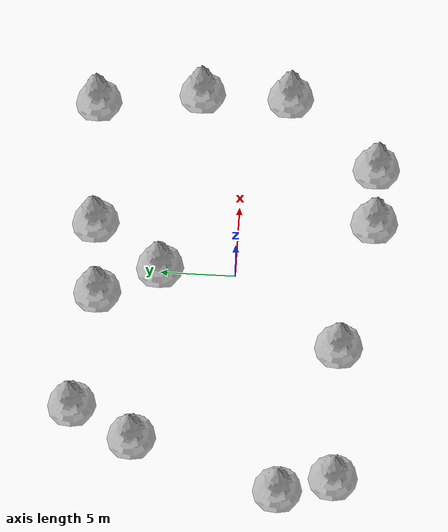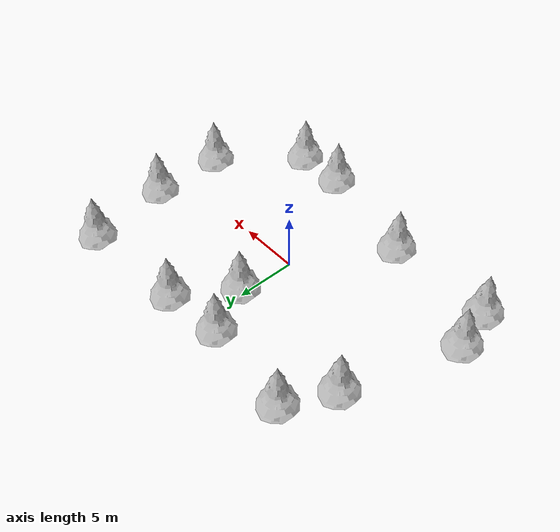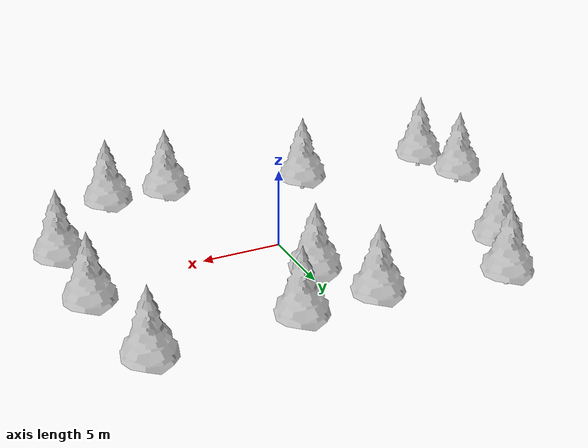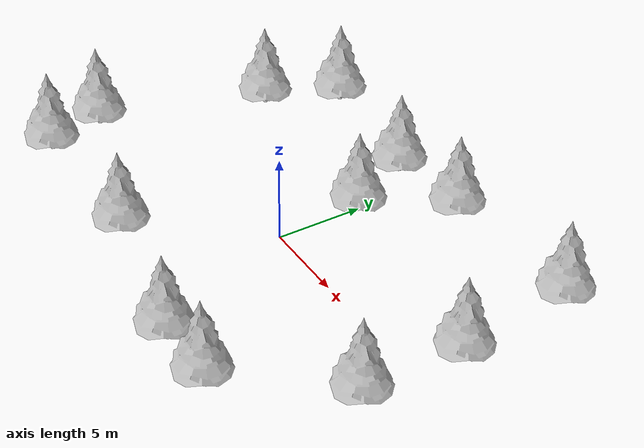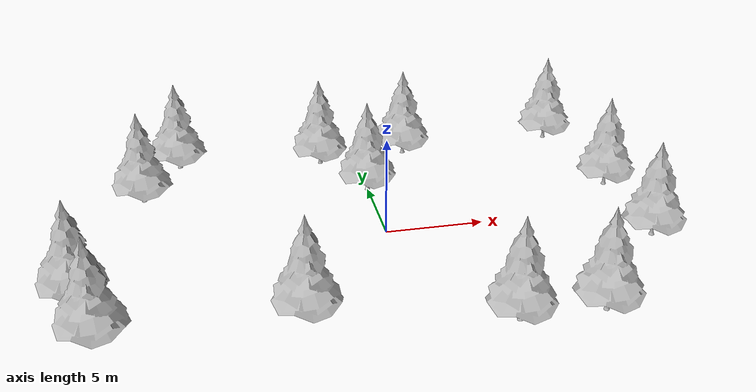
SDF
<sdf version="1.4">
 <world name="default">
  <scene><ambient>0.5 0.5 0.5 1</ambient><background>0.5 0.5 0.5 1</background><shadows>false</shadows></scene>
  <plugin name="ros_interface_plugin" filename="librotors_gazebo_ros_interface_plugin.so"/>
  <plugin name="gazebo_octomap" filename="librotors_gazebo_octomap_plugin.so"/>
  <physics type="ode">
   <gravity>0 0 -9.81</gravity>
   <ode>
    <solver><type>quick</type><iters>1000</iters><sor>1.3</sor></solver>
    <constraints>
     <cfm>0.0</cfm>
     <erp>0.2</erp>
     <contact_max_correcting_vel>100.0</contact_max_correcting_vel>
     <contact_surface_layer>0.01</contact_surface_layer>
    </constraints>
   </ode>
   <real_time_update_rate>100</real_time_update_rate>
   <real_time_factor>1</real_time_factor>
   <max_step_size>0.01</max_step_size>
  </physics>
  <light name="directional_light_1" type="directional">
   <cast_shadows>false</cast_shadows>
   <pose>0 0 30 0.1 0.1 0</pose>
   <diffuse>1.0 1.0 1.0 1</diffuse>
   <specular>.1 .1 .1 1</specular>
   <attenuation><range>300</range></attenuation>
   <direction>0.1 0.1 -1</direction>
  </light>
  <include><name>barrel_110l</name><pose>-14 -7 0.0  0.0 0.0 0.0</pose><uri>model://pine_tree</uri></include>
  <include>
   <name>barrel_110l_n</name>
   <pose>-15 -3.5 0.0  0.0 0.0 0.0</pose>
   <uri>model://pine_tree</uri>
  </include>
  <include><name>barrel_110l_d</name><pose>13 -3 0.0  0.0 0.0 0.0</pose><uri>model://pine_tree</uri></include>
  <include><name>barrel_110l_nd</name><pose>13 3 0.0  0.0 0.0 0.0</pose><uri>model://pine_tree</uri></include>
  <include><name>barrel_110l.001</name><pose>-12 6 0.0  0.0 0.0 0.0</pose><uri>model://pine_tree</uri></include>
  <include>
   <name>barrel_110l.001_n</name>
   <pose>-10 10 0.0  0.0 0.0 0.0</pose>
   <uri>model://pine_tree</uri>
  </include>
  <include><name>barrel_110l.003</name><pose>-2 9 0.0  0.0 0.0 0.0</pose><uri>model://pine_tree</uri></include>
  <include>
   <name>barrel_110l.003_n</name>
   <pose>3 9.5 0.0  0.0 0.0 0.0</pose>
   <uri>model://pine_tree</uri>
  </include>
  <include><name>barrel_110l.004</name><pose>4 -9 0.0  0.0 0.0 0.0</pose><uri>model://pine_tree</uri></include>
  <include>
   <name>barrel_110l.004_n</name>
   <pose>8 -9 0.0  0.0 0.0 0.0</pose>
   <uri>model://pine_tree</uri>
  </include>
  <include><name>barrel_110l.006</name><pose>12 10 0.0  0.0 0.0 0.0</pose><uri>model://pine_tree</uri></include>
  <include><name>barrel_110l.007</name><pose>0  5 0.0  0.0 0.0 0.0</pose><uri>model://pine_tree</uri></include>
  <include><name>barrel_110l.008</name><pose>-5 -7 0.0  0.0 0.0 0.0</pose><uri>model://pine_tree</uri></include>
 </world>
</sdf>

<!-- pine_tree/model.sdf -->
<sdf version="1.6">
  <model name="pine_tree">
    <static>true</static>
    <link name="link">
      <collision name="collision">
        <geometry>
          <mesh>
            <uri>file://isr-testbed/pine_tree/meshes/pine_tree.dae</uri>
          </mesh>
        </geometry>
      </collision>
      <visual name="branch">
        <geometry>
          <mesh>
            <uri>file://isr-testbed/pine_tree/meshes/pine_tree.dae</uri>
            <submesh>
              <name>Branch</name>
            </submesh>
          </mesh>
        </geometry>
        <material>
          <script>
            <uri>file://isr-testbed/pine_tree/materials/scripts/</uri>
            <uri>file://isr-testbed/pine_tree/materials/textures/</uri>
            <name>PineTree/Branch</name>
          </script>
        </material>
      </visual>
      <visual name="bark">
        <geometry>
          <mesh>
            <uri>file://isr-testbed/pine_tree/meshes/pine_tree.dae</uri>
            <submesh>
              <name>Bark</name>
            </submesh>
          </mesh>
        </geometry>
        <material>
          <script>
            <uri>file://isr-testbed/pine_tree/materials/scripts/</uri>
            <uri>file://isr-testbed/pine_tree/materials/textures/</uri>
            <name>PineTree/Bark</name>
          </script>
        </material>
      </visual>
    </link>
  </model>
</sdf>
